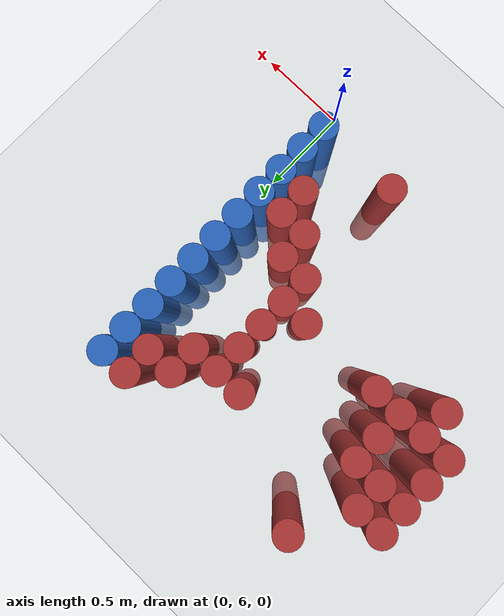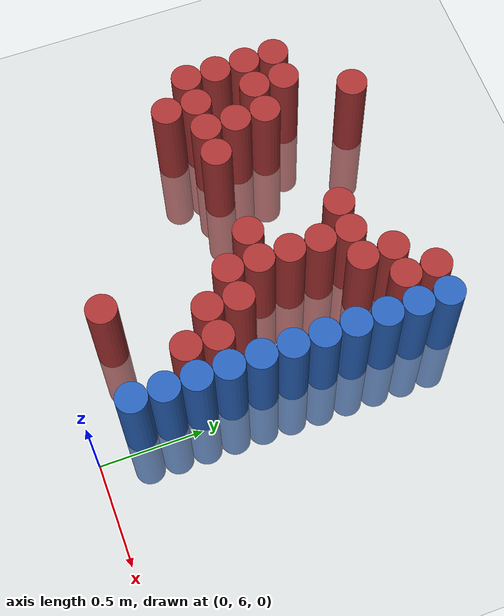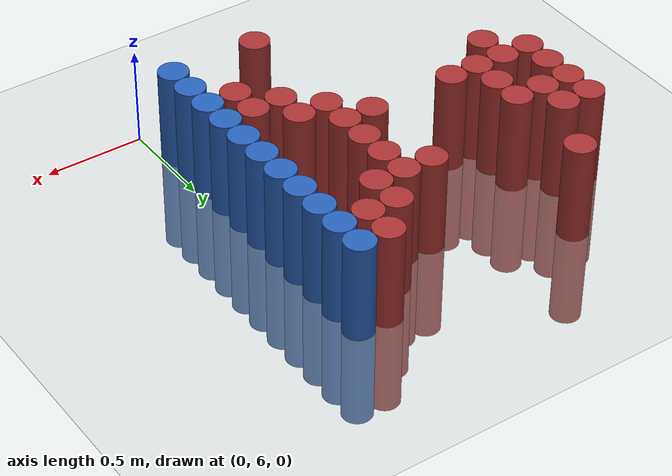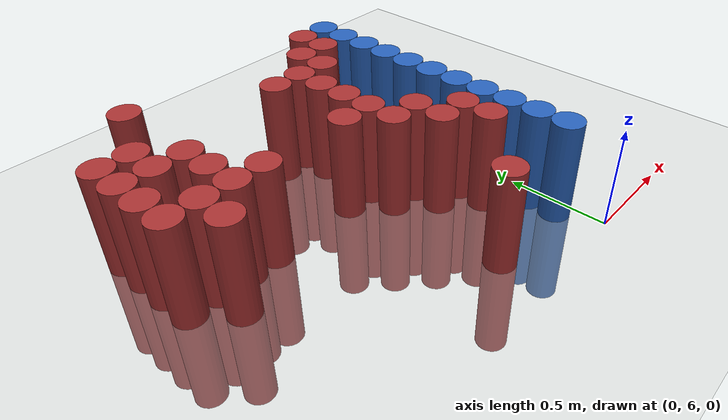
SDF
<sdf version="1.6">
 <world name="default">
  <model name="ground_plane">
   <static>1</static>
   <link name="link">
    <collision name="collision">
     <geometry><plane><normal>0 0 1</normal><size>100 100</size></plane></geometry>
     <surface><friction><ode><mu>100</mu><mu2>50</mu2></ode></friction></surface>
    </collision>
    <visual name="visual">
     <cast_shadows>0</cast_shadows>
     <geometry><plane><normal>0 0 1</normal><size>100 100</size></plane></geometry>
     <material>
      <script><uri>file://media/materials/scripts/gazebo.material</uri><name>Gazebo/Grey</name></script>
     </material>
    </visual>
   </link>
  </model>
  <model name="unit_cylinder_211">
   <static>1</static>
   <pose>-1.575000 6.975000 0.000000 0.000000 0.000000 0.000000</pose>
   <link name="link">
    <inertial>
     <mass>1</mass>
     <inertia><ixx>0.145833</ixx><ixy>0</ixy><ixz>0</ixz><iyy>0.145833</iyy><iyz>0</iyz><izz>0.125</izz></inertia>
    </inertial>
    <collision name="collision">
     <geometry><cylinder><radius>0.075000</radius><length>1</length></cylinder></geometry>
    </collision>
    <visual name="visual">
     <geometry><cylinder><radius>0.075000</radius><length>1</length></cylinder></geometry>
     <material>
      <ambient>0.648000 0.192000 0.192000 1</ambient>
      <diffuse>0.648000 0.192000 0.192000 1</diffuse>
     </material>
     <material>
      <script><name>Gazebo/Grey</name><uri>file://media/materials/scripts/gazebo.material</uri></script>
     </material>
    </visual>
    <sensor name="sensor_contact" type="contact"><contact><collision>collision</collision></contact></sensor>
   </link>
   <plugin filename="gz-sim-touchplugin-system" name="gz::sim::systems::TouchPlugin">
    <target>robot</target>
    <namespace>robot</namespace>
    <time>0.001</time>
    <enabled>true</enabled>
   </plugin>
  </model>
  <model name="unit_cylinder_212">
   <static>1</static>
   <pose>-1.575000 7.125000 0.000000 0.000000 0.000000 0.000000</pose>
   <link name="link">
    <inertial>
     <mass>1</mass>
     <inertia><ixx>0.145833</ixx><ixy>0</ixy><ixz>0</ixz><iyy>0.145833</iyy><iyz>0</iyz><izz>0.125</izz></inertia>
    </inertial>
    <collision name="collision">
     <geometry><cylinder><radius>0.075000</radius><length>1</length></cylinder></geometry>
    </collision>
    <visual name="visual">
     <geometry><cylinder><radius>0.075000</radius><length>1</length></cylinder></geometry>
     <material>
      <ambient>0.648000 0.192000 0.192000 1</ambient>
      <diffuse>0.648000 0.192000 0.192000 1</diffuse>
     </material>
     <material>
      <script><name>Gazebo/Grey</name><uri>file://media/materials/scripts/gazebo.material</uri></script>
     </material>
    </visual>
    <sensor name="sensor_contact" type="contact"><contact><collision>collision</collision></contact></sensor>
   </link>
   <plugin filename="gz-sim-touchplugin-system" name="gz::sim::systems::TouchPlugin">
    <target>robot</target>
    <namespace>robot</namespace>
    <time>0.001</time>
    <enabled>true</enabled>
   </plugin>
  </model>
  <model name="unit_cylinder_213">
   <static>1</static>
   <pose>-1.575000 7.275000 0.000000 0.000000 0.000000 0.000000</pose>
   <link name="link">
    <inertial>
     <mass>1</mass>
     <inertia><ixx>0.145833</ixx><ixy>0</ixy><ixz>0</ixz><iyy>0.145833</iyy><iyz>0</iyz><izz>0.125</izz></inertia>
    </inertial>
    <collision name="collision">
     <geometry><cylinder><radius>0.075000</radius><length>1</length></cylinder></geometry>
    </collision>
    <visual name="visual">
     <geometry><cylinder><radius>0.075000</radius><length>1</length></cylinder></geometry>
     <material>
      <ambient>0.648000 0.192000 0.192000 1</ambient>
      <diffuse>0.648000 0.192000 0.192000 1</diffuse>
     </material>
     <material>
      <script><name>Gazebo/Grey</name><uri>file://media/materials/scripts/gazebo.material</uri></script>
     </material>
    </visual>
    <sensor name="sensor_contact" type="contact"><contact><collision>collision</collision></contact></sensor>
   </link>
   <plugin filename="gz-sim-touchplugin-system" name="gz::sim::systems::TouchPlugin">
    <target>robot</target>
    <namespace>robot</namespace>
    <time>0.001</time>
    <enabled>true</enabled>
   </plugin>
  </model>
  <model name="unit_cylinder_214">
   <static>1</static>
   <pose>-1.575000 7.425000 0.000000 0.000000 0.000000 0.000000</pose>
   <link name="link">
    <inertial>
     <mass>1</mass>
     <inertia><ixx>0.145833</ixx><ixy>0</ixy><ixz>0</ixz><iyy>0.145833</iyy><iyz>0</iyz><izz>0.125</izz></inertia>
    </inertial>
    <collision name="collision">
     <geometry><cylinder><radius>0.075000</radius><length>1</length></cylinder></geometry>
    </collision>
    <visual name="visual">
     <geometry><cylinder><radius>0.075000</radius><length>1</length></cylinder></geometry>
     <material>
      <ambient>0.648000 0.192000 0.192000 1</ambient>
      <diffuse>0.648000 0.192000 0.192000 1</diffuse>
     </material>
     <material>
      <script><name>Gazebo/Grey</name><uri>file://media/materials/scripts/gazebo.material</uri></script>
     </material>
    </visual>
    <sensor name="sensor_contact" type="contact"><contact><collision>collision</collision></contact></sensor>
   </link>
   <plugin filename="gz-sim-touchplugin-system" name="gz::sim::systems::TouchPlugin">
    <target>robot</target>
    <namespace>robot</namespace>
    <time>0.001</time>
    <enabled>true</enabled>
   </plugin>
  </model>
  <model name="unit_cylinder_218">
   <static>1</static>
   <pose>-1.425000 6.825000 0.000000 0.000000 0.000000 0.000000</pose>
   <link name="link">
    <inertial>
     <mass>1</mass>
     <inertia><ixx>0.145833</ixx><ixy>0</ixy><ixz>0</ixz><iyy>0.145833</iyy><iyz>0</iyz><izz>0.125</izz></inertia>
    </inertial>
    <collision name="collision">
     <geometry><cylinder><radius>0.075000</radius><length>1</length></cylinder></geometry>
    </collision>
    <visual name="visual">
     <geometry><cylinder><radius>0.075000</radius><length>1</length></cylinder></geometry>
     <material>
      <ambient>0.648000 0.192000 0.192000 1</ambient>
      <diffuse>0.648000 0.192000 0.192000 1</diffuse>
     </material>
     <material>
      <script><name>Gazebo/Grey</name><uri>file://media/materials/scripts/gazebo.material</uri></script>
     </material>
    </visual>
    <sensor name="sensor_contact" type="contact"><contact><collision>collision</collision></contact></sensor>
   </link>
   <plugin filename="gz-sim-touchplugin-system" name="gz::sim::systems::TouchPlugin">
    <target>robot</target>
    <namespace>robot</namespace>
    <time>0.001</time>
    <enabled>true</enabled>
   </plugin>
  </model>
  <model name="unit_cylinder_219">
   <static>1</static>
   <pose>-1.425000 6.975000 0.000000 0.000000 0.000000 0.000000</pose>
   <link name="link">
    <inertial>
     <mass>1</mass>
     <inertia><ixx>0.145833</ixx><ixy>0</ixy><ixz>0</ixz><iyy>0.145833</iyy><iyz>0</iyz><izz>0.125</izz></inertia>
    </inertial>
    <collision name="collision">
     <geometry><cylinder><radius>0.075000</radius><length>1</length></cylinder></geometry>
    </collision>
    <visual name="visual">
     <geometry><cylinder><radius>0.075000</radius><length>1</length></cylinder></geometry>
     <material>
      <ambient>0.648000 0.192000 0.192000 1</ambient>
      <diffuse>0.648000 0.192000 0.192000 1</diffuse>
     </material>
     <material>
      <script><name>Gazebo/Grey</name><uri>file://media/materials/scripts/gazebo.material</uri></script>
     </material>
    </visual>
    <sensor name="sensor_contact" type="contact"><contact><collision>collision</collision></contact></sensor>
   </link>
   <plugin filename="gz-sim-touchplugin-system" name="gz::sim::systems::TouchPlugin">
    <target>robot</target>
    <namespace>robot</namespace>
    <time>0.001</time>
    <enabled>true</enabled>
   </plugin>
  </model>
  <model name="unit_cylinder_220">
   <static>1</static>
   <pose>-1.425000 7.275000 0.000000 0.000000 0.000000 0.000000</pose>
   <link name="link">
    <inertial>
     <mass>1</mass>
     <inertia><ixx>0.145833</ixx><ixy>0</ixy><ixz>0</ixz><iyy>0.145833</iyy><iyz>0</iyz><izz>0.125</izz></inertia>
    </inertial>
    <collision name="collision">
     <geometry><cylinder><radius>0.075000</radius><length>1</length></cylinder></geometry>
    </collision>
    <visual name="visual">
     <geometry><cylinder><radius>0.075000</radius><length>1</length></cylinder></geometry>
     <material>
      <ambient>0.648000 0.192000 0.192000 1</ambient>
      <diffuse>0.648000 0.192000 0.192000 1</diffuse>
     </material>
     <material>
      <script><name>Gazebo/Grey</name><uri>file://media/materials/scripts/gazebo.material</uri></script>
     </material>
    </visual>
    <sensor name="sensor_contact" type="contact"><contact><collision>collision</collision></contact></sensor>
   </link>
   <plugin filename="gz-sim-touchplugin-system" name="gz::sim::systems::TouchPlugin">
    <target>robot</target>
    <namespace>robot</namespace>
    <time>0.001</time>
    <enabled>true</enabled>
   </plugin>
  </model>
  <model name="unit_cylinder_221">
   <static>1</static>
   <pose>-1.425000 7.425000 0.000000 0.000000 0.000000 0.000000</pose>
   <link name="link">
    <inertial>
     <mass>1</mass>
     <inertia><ixx>0.145833</ixx><ixy>0</ixy><ixz>0</ixz><iyy>0.145833</iyy><iyz>0</iyz><izz>0.125</izz></inertia>
    </inertial>
    <collision name="collision">
     <geometry><cylinder><radius>0.075000</radius><length>1</length></cylinder></geometry>
    </collision>
    <visual name="visual">
     <geometry><cylinder><radius>0.075000</radius><length>1</length></cylinder></geometry>
     <material>
      <ambient>0.648000 0.192000 0.192000 1</ambient>
      <diffuse>0.648000 0.192000 0.192000 1</diffuse>
     </material>
     <material>
      <script><name>Gazebo/Grey</name><uri>file://media/materials/scripts/gazebo.material</uri></script>
     </material>
    </visual>
    <sensor name="sensor_contact" type="contact"><contact><collision>collision</collision></contact></sensor>
   </link>
   <plugin filename="gz-sim-touchplugin-system" name="gz::sim::systems::TouchPlugin">
    <target>robot</target>
    <namespace>robot</namespace>
    <time>0.001</time>
    <enabled>true</enabled>
   </plugin>
  </model>
  <model name="unit_cylinder_224">
   <static>1</static>
   <pose>-1.275000 6.975000 0.000000 0.000000 0.000000 0.000000</pose>
   <link name="link">
    <inertial>
     <mass>1</mass>
     <inertia><ixx>0.145833</ixx><ixy>0</ixy><ixz>0</ixz><iyy>0.145833</iyy><iyz>0</iyz><izz>0.125</izz></inertia>
    </inertial>
    <collision name="collision">
     <geometry><cylinder><radius>0.075000</radius><length>1</length></cylinder></geometry>
    </collision>
    <visual name="visual">
     <geometry><cylinder><radius>0.075000</radius><length>1</length></cylinder></geometry>
     <material>
      <ambient>0.648000 0.192000 0.192000 1</ambient>
      <diffuse>0.648000 0.192000 0.192000 1</diffuse>
     </material>
     <material>
      <script><name>Gazebo/Grey</name><uri>file://media/materials/scripts/gazebo.material</uri></script>
     </material>
    </visual>
    <sensor name="sensor_contact" type="contact"><contact><collision>collision</collision></contact></sensor>
   </link>
   <plugin filename="gz-sim-touchplugin-system" name="gz::sim::systems::TouchPlugin">
    <target>robot</target>
    <namespace>robot</namespace>
    <time>0.001</time>
    <enabled>true</enabled>
   </plugin>
  </model>
  <model name="unit_cylinder_225">
   <static>1</static>
   <pose>-1.275000 7.125000 0.000000 0.000000 0.000000 0.000000</pose>
   <link name="link">
    <inertial>
     <mass>1</mass>
     <inertia><ixx>0.145833</ixx><ixy>0</ixy><ixz>0</ixz><iyy>0.145833</iyy><iyz>0</iyz><izz>0.125</izz></inertia>
    </inertial>
    <collision name="collision">
     <geometry><cylinder><radius>0.075000</radius><length>1</length></cylinder></geometry>
    </collision>
    <visual name="visual">
     <geometry><cylinder><radius>0.075000</radius><length>1</length></cylinder></geometry>
     <material>
      <ambient>0.648000 0.192000 0.192000 1</ambient>
      <diffuse>0.648000 0.192000 0.192000 1</diffuse>
     </material>
     <material>
      <script><name>Gazebo/Grey</name><uri>file://media/materials/scripts/gazebo.material</uri></script>
     </material>
    </visual>
    <sensor name="sensor_contact" type="contact"><contact><collision>collision</collision></contact></sensor>
   </link>
   <plugin filename="gz-sim-touchplugin-system" name="gz::sim::systems::TouchPlugin">
    <target>robot</target>
    <namespace>robot</namespace>
    <time>0.001</time>
    <enabled>true</enabled>
   </plugin>
  </model>
  <model name="unit_cylinder_226">
   <static>1</static>
   <pose>-1.275000 7.275000 0.000000 0.000000 0.000000 0.000000</pose>
   <link name="link">
    <inertial>
     <mass>1</mass>
     <inertia><ixx>0.145833</ixx><ixy>0</ixy><ixz>0</ixz><iyy>0.145833</iyy><iyz>0</iyz><izz>0.125</izz></inertia>
    </inertial>
    <collision name="collision">
     <geometry><cylinder><radius>0.075000</radius><length>1</length></cylinder></geometry>
    </collision>
    <visual name="visual">
     <geometry><cylinder><radius>0.075000</radius><length>1</length></cylinder></geometry>
     <material>
      <ambient>0.648000 0.192000 0.192000 1</ambient>
      <diffuse>0.648000 0.192000 0.192000 1</diffuse>
     </material>
     <material>
      <script><name>Gazebo/Grey</name><uri>file://media/materials/scripts/gazebo.material</uri></script>
     </material>
    </visual>
    <sensor name="sensor_contact" type="contact"><contact><collision>collision</collision></contact></sensor>
   </link>
   <plugin filename="gz-sim-touchplugin-system" name="gz::sim::systems::TouchPlugin">
    <target>robot</target>
    <namespace>robot</namespace>
    <time>0.001</time>
    <enabled>true</enabled>
   </plugin>
  </model>
  <model name="unit_cylinder_227">
   <static>1</static>
   <pose>-1.275000 7.725000 0.000000 0.000000 0.000000 0.000000</pose>
   <link name="link">
    <inertial>
     <mass>1</mass>
     <inertia><ixx>0.145833</ixx><ixy>0</ixy><ixz>0</ixz><iyy>0.145833</iyy><iyz>0</iyz><izz>0.125</izz></inertia>
    </inertial>
    <collision name="collision">
     <geometry><cylinder><radius>0.075000</radius><length>1</length></cylinder></geometry>
    </collision>
    <visual name="visual">
     <geometry><cylinder><radius>0.075000</radius><length>1</length></cylinder></geometry>
     <material>
      <ambient>0.648000 0.192000 0.192000 1</ambient>
      <diffuse>0.648000 0.192000 0.192000 1</diffuse>
     </material>
     <material>
      <script><name>Gazebo/Grey</name><uri>file://media/materials/scripts/gazebo.material</uri></script>
     </material>
    </visual>
    <sensor name="sensor_contact" type="contact"><contact><collision>collision</collision></contact></sensor>
   </link>
   <plugin filename="gz-sim-touchplugin-system" name="gz::sim::systems::TouchPlugin">
    <target>robot</target>
    <namespace>robot</namespace>
    <time>0.001</time>
    <enabled>true</enabled>
   </plugin>
  </model>
  <model name="unit_cylinder_229">
   <static>1</static>
   <pose>-1.125000 6.975000 0.000000 0.000000 0.000000 0.000000</pose>
   <link name="link">
    <inertial>
     <mass>1</mass>
     <inertia><ixx>0.145833</ixx><ixy>0</ixy><ixz>0</ixz><iyy>0.145833</iyy><iyz>0</iyz><izz>0.125</izz></inertia>
    </inertial>
    <collision name="collision">
     <geometry><cylinder><radius>0.075000</radius><length>1</length></cylinder></geometry>
    </collision>
    <visual name="visual">
     <geometry><cylinder><radius>0.075000</radius><length>1</length></cylinder></geometry>
     <material>
      <ambient>0.648000 0.192000 0.192000 1</ambient>
      <diffuse>0.648000 0.192000 0.192000 1</diffuse>
     </material>
     <material>
      <script><name>Gazebo/Grey</name><uri>file://media/materials/scripts/gazebo.material</uri></script>
     </material>
    </visual>
    <sensor name="sensor_contact" type="contact"><contact><collision>collision</collision></contact></sensor>
   </link>
   <plugin filename="gz-sim-touchplugin-system" name="gz::sim::systems::TouchPlugin">
    <target>robot</target>
    <namespace>robot</namespace>
    <time>0.001</time>
    <enabled>true</enabled>
   </plugin>
  </model>
  <model name="unit_cylinder_247">
   <static>1</static>
   <pose>-0.675000 6.975000 0.000000 0.000000 0.000000 0.000000</pose>
   <link name="link">
    <inertial>
     <mass>1</mass>
     <inertia><ixx>0.145833</ixx><ixy>0</ixy><ixz>0</ixz><iyy>0.145833</iyy><iyz>0</iyz><izz>0.125</izz></inertia>
    </inertial>
    <collision name="collision">
     <geometry><cylinder><radius>0.075000</radius><length>1</length></cylinder></geometry>
    </collision>
    <visual name="visual">
     <geometry><cylinder><radius>0.075000</radius><length>1</length></cylinder></geometry>
     <material>
      <ambient>0.648000 0.192000 0.192000 1</ambient>
      <diffuse>0.648000 0.192000 0.192000 1</diffuse>
     </material>
     <material>
      <script><name>Gazebo/Grey</name><uri>file://media/materials/scripts/gazebo.material</uri></script>
     </material>
    </visual>
    <sensor name="sensor_contact" type="contact"><contact><collision>collision</collision></contact></sensor>
   </link>
   <plugin filename="gz-sim-touchplugin-system" name="gz::sim::systems::TouchPlugin">
    <target>robot</target>
    <namespace>robot</namespace>
    <time>0.001</time>
    <enabled>true</enabled>
   </plugin>
  </model>
  <model name="unit_cylinder_248">
   <static>1</static>
   <pose>-0.675000 7.425000 0.000000 0.000000 0.000000 0.000000</pose>
   <link name="link">
    <inertial>
     <mass>1</mass>
     <inertia><ixx>0.145833</ixx><ixy>0</ixy><ixz>0</ixz><iyy>0.145833</iyy><iyz>0</iyz><izz>0.125</izz></inertia>
    </inertial>
    <collision name="collision">
     <geometry><cylinder><radius>0.075000</radius><length>1</length></cylinder></geometry>
    </collision>
    <visual name="visual">
     <geometry><cylinder><radius>0.075000</radius><length>1</length></cylinder></geometry>
     <material>
      <ambient>0.648000 0.192000 0.192000 1</ambient>
      <diffuse>0.648000 0.192000 0.192000 1</diffuse>
     </material>
     <material>
      <script><name>Gazebo/Grey</name><uri>file://media/materials/scripts/gazebo.material</uri></script>
     </material>
    </visual>
    <sensor name="sensor_contact" type="contact"><contact><collision>collision</collision></contact></sensor>
   </link>
   <plugin filename="gz-sim-touchplugin-system" name="gz::sim::systems::TouchPlugin">
    <target>robot</target>
    <namespace>robot</namespace>
    <time>0.001</time>
    <enabled>true</enabled>
   </plugin>
  </model>
  <model name="unit_cylinder_257">
   <static>1</static>
   <pose>-0.525000 6.225000 0.000000 0.000000 0.000000 0.000000</pose>
   <link name="link">
    <inertial>
     <mass>1</mass>
     <inertia><ixx>0.145833</ixx><ixy>0</ixy><ixz>0</ixz><iyy>0.145833</iyy><iyz>0</iyz><izz>0.125</izz></inertia>
    </inertial>
    <collision name="collision">
     <geometry><cylinder><radius>0.075000</radius><length>1</length></cylinder></geometry>
    </collision>
    <visual name="visual">
     <geometry><cylinder><radius>0.075000</radius><length>1</length></cylinder></geometry>
     <material>
      <ambient>0.648000 0.192000 0.192000 1</ambient>
      <diffuse>0.648000 0.192000 0.192000 1</diffuse>
     </material>
     <material>
      <script><name>Gazebo/Grey</name><uri>file://media/materials/scripts/gazebo.material</uri></script>
     </material>
    </visual>
    <sensor name="sensor_contact" type="contact"><contact><collision>collision</collision></contact></sensor>
   </link>
   <plugin filename="gz-sim-touchplugin-system" name="gz::sim::systems::TouchPlugin">
    <target>robot</target>
    <namespace>robot</namespace>
    <time>0.001</time>
    <enabled>true</enabled>
   </plugin>
  </model>
  <model name="unit_cylinder_258">
   <static>1</static>
   <pose>-0.525000 6.825000 0.000000 0.000000 0.000000 0.000000</pose>
   <link name="link">
    <inertial>
     <mass>1</mass>
     <inertia><ixx>0.145833</ixx><ixy>0</ixy><ixz>0</ixz><iyy>0.145833</iyy><iyz>0</iyz><izz>0.125</izz></inertia>
    </inertial>
    <collision name="collision">
     <geometry><cylinder><radius>0.075000</radius><length>1</length></cylinder></geometry>
    </collision>
    <visual name="visual">
     <geometry><cylinder><radius>0.075000</radius><length>1</length></cylinder></geometry>
     <material>
      <ambient>0.648000 0.192000 0.192000 1</ambient>
      <diffuse>0.648000 0.192000 0.192000 1</diffuse>
     </material>
     <material>
      <script><name>Gazebo/Grey</name><uri>file://media/materials/scripts/gazebo.material</uri></script>
     </material>
    </visual>
    <sensor name="sensor_contact" type="contact"><contact><collision>collision</collision></contact></sensor>
   </link>
   <plugin filename="gz-sim-touchplugin-system" name="gz::sim::systems::TouchPlugin">
    <target>robot</target>
    <namespace>robot</namespace>
    <time>0.001</time>
    <enabled>true</enabled>
   </plugin>
  </model>
  <model name="unit_cylinder_259">
   <static>1</static>
   <pose>-0.525000 6.975000 0.000000 0.000000 0.000000 0.000000</pose>
   <link name="link">
    <inertial>
     <mass>1</mass>
     <inertia><ixx>0.145833</ixx><ixy>0</ixy><ixz>0</ixz><iyy>0.145833</iyy><iyz>0</iyz><izz>0.125</izz></inertia>
    </inertial>
    <collision name="collision">
     <geometry><cylinder><radius>0.075000</radius><length>1</length></cylinder></geometry>
    </collision>
    <visual name="visual">
     <geometry><cylinder><radius>0.075000</radius><length>1</length></cylinder></geometry>
     <material>
      <ambient>0.648000 0.192000 0.192000 1</ambient>
      <diffuse>0.648000 0.192000 0.192000 1</diffuse>
     </material>
     <material>
      <script><name>Gazebo/Grey</name><uri>file://media/materials/scripts/gazebo.material</uri></script>
     </material>
    </visual>
    <sensor name="sensor_contact" type="contact"><contact><collision>collision</collision></contact></sensor>
   </link>
   <plugin filename="gz-sim-touchplugin-system" name="gz::sim::systems::TouchPlugin">
    <target>robot</target>
    <namespace>robot</namespace>
    <time>0.001</time>
    <enabled>true</enabled>
   </plugin>
  </model>
  <model name="unit_cylinder_260">
   <static>1</static>
   <pose>-0.525000 7.125000 0.000000 0.000000 0.000000 0.000000</pose>
   <link name="link">
    <inertial>
     <mass>1</mass>
     <inertia><ixx>0.145833</ixx><ixy>0</ixy><ixz>0</ixz><iyy>0.145833</iyy><iyz>0</iyz><izz>0.125</izz></inertia>
    </inertial>
    <collision name="collision">
     <geometry><cylinder><radius>0.075000</radius><length>1</length></cylinder></geometry>
    </collision>
    <visual name="visual">
     <geometry><cylinder><radius>0.075000</radius><length>1</length></cylinder></geometry>
     <material>
      <ambient>0.648000 0.192000 0.192000 1</ambient>
      <diffuse>0.648000 0.192000 0.192000 1</diffuse>
     </material>
     <material>
      <script><name>Gazebo/Grey</name><uri>file://media/materials/scripts/gazebo.material</uri></script>
     </material>
    </visual>
    <sensor name="sensor_contact" type="contact"><contact><collision>collision</collision></contact></sensor>
   </link>
   <plugin filename="gz-sim-touchplugin-system" name="gz::sim::systems::TouchPlugin">
    <target>robot</target>
    <namespace>robot</namespace>
    <time>0.001</time>
    <enabled>true</enabled>
   </plugin>
  </model>
  <model name="unit_cylinder_261">
   <static>1</static>
   <pose>-0.525000 7.275000 0.000000 0.000000 0.000000 0.000000</pose>
   <link name="link">
    <inertial>
     <mass>1</mass>
     <inertia><ixx>0.145833</ixx><ixy>0</ixy><ixz>0</ixz><iyy>0.145833</iyy><iyz>0</iyz><izz>0.125</izz></inertia>
    </inertial>
    <collision name="collision">
     <geometry><cylinder><radius>0.075000</radius><length>1</length></cylinder></geometry>
    </collision>
    <visual name="visual">
     <geometry><cylinder><radius>0.075000</radius><length>1</length></cylinder></geometry>
     <material>
      <ambient>0.648000 0.192000 0.192000 1</ambient>
      <diffuse>0.648000 0.192000 0.192000 1</diffuse>
     </material>
     <material>
      <script><name>Gazebo/Grey</name><uri>file://media/materials/scripts/gazebo.material</uri></script>
     </material>
    </visual>
    <sensor name="sensor_contact" type="contact"><contact><collision>collision</collision></contact></sensor>
   </link>
   <plugin filename="gz-sim-touchplugin-system" name="gz::sim::systems::TouchPlugin">
    <target>robot</target>
    <namespace>robot</namespace>
    <time>0.001</time>
    <enabled>true</enabled>
   </plugin>
  </model>
  <model name="unit_cylinder_262">
   <static>1</static>
   <pose>-0.525000 7.425000 0.000000 0.000000 0.000000 0.000000</pose>
   <link name="link">
    <inertial>
     <mass>1</mass>
     <inertia><ixx>0.145833</ixx><ixy>0</ixy><ixz>0</ixz><iyy>0.145833</iyy><iyz>0</iyz><izz>0.125</izz></inertia>
    </inertial>
    <collision name="collision">
     <geometry><cylinder><radius>0.075000</radius><length>1</length></cylinder></geometry>
    </collision>
    <visual name="visual">
     <geometry><cylinder><radius>0.075000</radius><length>1</length></cylinder></geometry>
     <material>
      <ambient>0.648000 0.192000 0.192000 1</ambient>
      <diffuse>0.648000 0.192000 0.192000 1</diffuse>
     </material>
     <material>
      <script><name>Gazebo/Grey</name><uri>file://media/materials/scripts/gazebo.material</uri></script>
     </material>
    </visual>
    <sensor name="sensor_contact" type="contact"><contact><collision>collision</collision></contact></sensor>
   </link>
   <plugin filename="gz-sim-touchplugin-system" name="gz::sim::systems::TouchPlugin">
    <target>robot</target>
    <namespace>robot</namespace>
    <time>0.001</time>
    <enabled>true</enabled>
   </plugin>
  </model>
  <model name="unit_cylinder_268">
   <static>1</static>
   <pose>-0.375000 6.675000 0.000000 0.000000 0.000000 0.000000</pose>
   <link name="link">
    <inertial>
     <mass>1</mass>
     <inertia><ixx>0.145833</ixx><ixy>0</ixy><ixz>0</ixz><iyy>0.145833</iyy><iyz>0</iyz><izz>0.125</izz></inertia>
    </inertial>
    <collision name="collision">
     <geometry><cylinder><radius>0.075000</radius><length>1</length></cylinder></geometry>
    </collision>
    <visual name="visual">
     <geometry><cylinder><radius>0.075000</radius><length>1</length></cylinder></geometry>
     <material>
      <ambient>0.648000 0.192000 0.192000 1</ambient>
      <diffuse>0.648000 0.192000 0.192000 1</diffuse>
     </material>
     <material>
      <script><name>Gazebo/Grey</name><uri>file://media/materials/scripts/gazebo.material</uri></script>
     </material>
    </visual>
    <sensor name="sensor_contact" type="contact"><contact><collision>collision</collision></contact></sensor>
   </link>
   <plugin filename="gz-sim-touchplugin-system" name="gz::sim::systems::TouchPlugin">
    <target>robot</target>
    <namespace>robot</namespace>
    <time>0.001</time>
    <enabled>true</enabled>
   </plugin>
  </model>
  <model name="unit_cylinder_269">
   <static>1</static>
   <pose>-0.375000 6.825000 0.000000 0.000000 0.000000 0.000000</pose>
   <link name="link">
    <inertial>
     <mass>1</mass>
     <inertia><ixx>0.145833</ixx><ixy>0</ixy><ixz>0</ixz><iyy>0.145833</iyy><iyz>0</iyz><izz>0.125</izz></inertia>
    </inertial>
    <collision name="collision">
     <geometry><cylinder><radius>0.075000</radius><length>1</length></cylinder></geometry>
    </collision>
    <visual name="visual">
     <geometry><cylinder><radius>0.075000</radius><length>1</length></cylinder></geometry>
     <material>
      <ambient>0.648000 0.192000 0.192000 1</ambient>
      <diffuse>0.648000 0.192000 0.192000 1</diffuse>
     </material>
     <material>
      <script><name>Gazebo/Grey</name><uri>file://media/materials/scripts/gazebo.material</uri></script>
     </material>
    </visual>
    <sensor name="sensor_contact" type="contact"><contact><collision>collision</collision></contact></sensor>
   </link>
   <plugin filename="gz-sim-touchplugin-system" name="gz::sim::systems::TouchPlugin">
    <target>robot</target>
    <namespace>robot</namespace>
    <time>0.001</time>
    <enabled>true</enabled>
   </plugin>
  </model>
  <model name="unit_cylinder_270">
   <static>1</static>
   <pose>-0.375000 7.425000 0.000000 0.000000 0.000000 0.000000</pose>
   <link name="link">
    <inertial>
     <mass>1</mass>
     <inertia><ixx>0.145833</ixx><ixy>0</ixy><ixz>0</ixz><iyy>0.145833</iyy><iyz>0</iyz><izz>0.125</izz></inertia>
    </inertial>
    <collision name="collision">
     <geometry><cylinder><radius>0.075000</radius><length>1</length></cylinder></geometry>
    </collision>
    <visual name="visual">
     <geometry><cylinder><radius>0.075000</radius><length>1</length></cylinder></geometry>
     <material>
      <ambient>0.648000 0.192000 0.192000 1</ambient>
      <diffuse>0.648000 0.192000 0.192000 1</diffuse>
     </material>
     <material>
      <script><name>Gazebo/Grey</name><uri>file://media/materials/scripts/gazebo.material</uri></script>
     </material>
    </visual>
    <sensor name="sensor_contact" type="contact"><contact><collision>collision</collision></contact></sensor>
   </link>
   <plugin filename="gz-sim-touchplugin-system" name="gz::sim::systems::TouchPlugin">
    <target>robot</target>
    <namespace>robot</namespace>
    <time>0.001</time>
    <enabled>true</enabled>
   </plugin>
  </model>
  <model name="unit_cylinder_271">
   <static>1</static>
   <pose>-0.375000 7.575000 0.000000 0.000000 0.000000 0.000000</pose>
   <link name="link">
    <inertial>
     <mass>1</mass>
     <inertia><ixx>0.145833</ixx><ixy>0</ixy><ixz>0</ixz><iyy>0.145833</iyy><iyz>0</iyz><izz>0.125</izz></inertia>
    </inertial>
    <collision name="collision">
     <geometry><cylinder><radius>0.075000</radius><length>1</length></cylinder></geometry>
    </collision>
    <visual name="visual">
     <geometry><cylinder><radius>0.075000</radius><length>1</length></cylinder></geometry>
     <material>
      <ambient>0.648000 0.192000 0.192000 1</ambient>
      <diffuse>0.648000 0.192000 0.192000 1</diffuse>
     </material>
     <material>
      <script><name>Gazebo/Grey</name><uri>file://media/materials/scripts/gazebo.material</uri></script>
     </material>
    </visual>
    <sensor name="sensor_contact" type="contact"><contact><collision>collision</collision></contact></sensor>
   </link>
   <plugin filename="gz-sim-touchplugin-system" name="gz::sim::systems::TouchPlugin">
    <target>robot</target>
    <namespace>robot</namespace>
    <time>0.001</time>
    <enabled>true</enabled>
   </plugin>
  </model>
  <model name="unit_cylinder_278">
   <static>1</static>
   <pose>-0.225000 6.525000 0.000000 0.000000 0.000000 0.000000</pose>
   <link name="link">
    <inertial>
     <mass>1</mass>
     <inertia><ixx>0.145833</ixx><ixy>0</ixy><ixz>0</ixz><iyy>0.145833</iyy><iyz>0</iyz><izz>0.125</izz></inertia>
    </inertial>
    <collision name="collision">
     <geometry><cylinder><radius>0.075000</radius><length>1</length></cylinder></geometry>
    </collision>
    <visual name="visual">
     <geometry><cylinder><radius>0.075000</radius><length>1</length></cylinder></geometry>
     <material>
      <ambient>0.648000 0.192000 0.192000 1</ambient>
      <diffuse>0.648000 0.192000 0.192000 1</diffuse>
     </material>
     <material>
      <script><name>Gazebo/Grey</name><uri>file://media/materials/scripts/gazebo.material</uri></script>
     </material>
    </visual>
    <sensor name="sensor_contact" type="contact"><contact><collision>collision</collision></contact></sensor>
   </link>
   <plugin filename="gz-sim-touchplugin-system" name="gz::sim::systems::TouchPlugin">
    <target>robot</target>
    <namespace>robot</namespace>
    <time>0.001</time>
    <enabled>true</enabled>
   </plugin>
  </model>
  <model name="unit_cylinder_279">
   <static>1</static>
   <pose>-0.225000 6.675000 0.000000 0.000000 0.000000 0.000000</pose>
   <link name="link">
    <inertial>
     <mass>1</mass>
     <inertia><ixx>0.145833</ixx><ixy>0</ixy><ixz>0</ixz><iyy>0.145833</iyy><iyz>0</iyz><izz>0.125</izz></inertia>
    </inertial>
    <collision name="collision">
     <geometry><cylinder><radius>0.075000</radius><length>1</length></cylinder></geometry>
    </collision>
    <visual name="visual">
     <geometry><cylinder><radius>0.075000</radius><length>1</length></cylinder></geometry>
     <material>
      <ambient>0.648000 0.192000 0.192000 1</ambient>
      <diffuse>0.648000 0.192000 0.192000 1</diffuse>
     </material>
     <material>
      <script><name>Gazebo/Grey</name><uri>file://media/materials/scripts/gazebo.material</uri></script>
     </material>
    </visual>
    <sensor name="sensor_contact" type="contact"><contact><collision>collision</collision></contact></sensor>
   </link>
   <plugin filename="gz-sim-touchplugin-system" name="gz::sim::systems::TouchPlugin">
    <target>robot</target>
    <namespace>robot</namespace>
    <time>0.001</time>
    <enabled>true</enabled>
   </plugin>
  </model>
  <model name="unit_cylinder_280">
   <static>1</static>
   <pose>-0.225000 7.575000 0.000000 0.000000 0.000000 0.000000</pose>
   <link name="link">
    <inertial>
     <mass>1</mass>
     <inertia><ixx>0.145833</ixx><ixy>0</ixy><ixz>0</ixz><iyy>0.145833</iyy><iyz>0</iyz><izz>0.125</izz></inertia>
    </inertial>
    <collision name="collision">
     <geometry><cylinder><radius>0.075000</radius><length>1</length></cylinder></geometry>
    </collision>
    <visual name="visual">
     <geometry><cylinder><radius>0.075000</radius><length>1</length></cylinder></geometry>
     <material>
      <ambient>0.648000 0.192000 0.192000 1</ambient>
      <diffuse>0.648000 0.192000 0.192000 1</diffuse>
     </material>
     <material>
      <script><name>Gazebo/Grey</name><uri>file://media/materials/scripts/gazebo.material</uri></script>
     </material>
    </visual>
    <sensor name="sensor_contact" type="contact"><contact><collision>collision</collision></contact></sensor>
   </link>
   <plugin filename="gz-sim-touchplugin-system" name="gz::sim::systems::TouchPlugin">
    <target>robot</target>
    <namespace>robot</namespace>
    <time>0.001</time>
    <enabled>true</enabled>
   </plugin>
  </model>
  <model name="unit_cylinder_281">
   <static>1</static>
   <pose>-0.225000 7.725000 0.000000 0.000000 0.000000 0.000000</pose>
   <link name="link">
    <inertial>
     <mass>1</mass>
     <inertia><ixx>0.145833</ixx><ixy>0</ixy><ixz>0</ixz><iyy>0.145833</iyy><iyz>0</iyz><izz>0.125</izz></inertia>
    </inertial>
    <collision name="collision">
     <geometry><cylinder><radius>0.075000</radius><length>1</length></cylinder></geometry>
    </collision>
    <visual name="visual">
     <geometry><cylinder><radius>0.075000</radius><length>1</length></cylinder></geometry>
     <material>
      <ambient>0.648000 0.192000 0.192000 1</ambient>
      <diffuse>0.648000 0.192000 0.192000 1</diffuse>
     </material>
     <material>
      <script><name>Gazebo/Grey</name><uri>file://media/materials/scripts/gazebo.material</uri></script>
     </material>
    </visual>
    <sensor name="sensor_contact" type="contact"><contact><collision>collision</collision></contact></sensor>
   </link>
   <plugin filename="gz-sim-touchplugin-system" name="gz::sim::systems::TouchPlugin">
    <target>robot</target>
    <namespace>robot</namespace>
    <time>0.001</time>
    <enabled>true</enabled>
   </plugin>
  </model>
  <model name="unit_cylinder_295">
   <static>1</static>
   <pose>-0.075000 6.225000 0.000000 0.000000 0.000000 0.000000</pose>
   <link name="link">
    <inertial>
     <mass>1</mass>
     <inertia><ixx>0.145833</ixx><ixy>0</ixy><ixz>0</ixz><iyy>0.145833</iyy><iyz>0</iyz><izz>0.125</izz></inertia>
    </inertial>
    <collision name="collision">
     <geometry><cylinder><radius>0.075000</radius><length>1</length></cylinder></geometry>
    </collision>
    <visual name="visual">
     <geometry><cylinder><radius>0.075000</radius><length>1</length></cylinder></geometry>
     <material>
      <ambient>0.152000 0.379000 0.720000 1</ambient>
      <diffuse>0.152000 0.379000 0.720000 1</diffuse>
     </material>
     <material>
      <script><name>Gazebo/Grey</name><uri>file://media/materials/scripts/gazebo.material</uri></script>
     </material>
    </visual>
    <sensor name="sensor_contact" type="contact"><contact><collision>collision</collision></contact></sensor>
   </link>
   <plugin filename="gz-sim-touchplugin-system" name="gz::sim::systems::TouchPlugin">
    <target>robot</target>
    <namespace>robot</namespace>
    <time>0.001</time>
    <enabled>true</enabled>
   </plugin>
  </model>
  <model name="unit_cylinder_296">
   <static>1</static>
   <pose>-0.075000 6.375000 0.000000 0.000000 0.000000 0.000000</pose>
   <link name="link">
    <inertial>
     <mass>1</mass>
     <inertia><ixx>0.145833</ixx><ixy>0</ixy><ixz>0</ixz><iyy>0.145833</iyy><iyz>0</iyz><izz>0.125</izz></inertia>
    </inertial>
    <collision name="collision">
     <geometry><cylinder><radius>0.075000</radius><length>1</length></cylinder></geometry>
    </collision>
    <visual name="visual">
     <geometry><cylinder><radius>0.075000</radius><length>1</length></cylinder></geometry>
     <material>
      <ambient>0.152000 0.379000 0.720000 1</ambient>
      <diffuse>0.152000 0.379000 0.720000 1</diffuse>
     </material>
     <material>
      <script><name>Gazebo/Grey</name><uri>file://media/materials/scripts/gazebo.material</uri></script>
     </material>
    </visual>
    <sensor name="sensor_contact" type="contact"><contact><collision>collision</collision></contact></sensor>
   </link>
   <plugin filename="gz-sim-touchplugin-system" name="gz::sim::systems::TouchPlugin">
    <target>robot</target>
    <namespace>robot</namespace>
    <time>0.001</time>
    <enabled>true</enabled>
   </plugin>
  </model>
  <model name="unit_cylinder_297">
   <static>1</static>
   <pose>-0.075000 6.525000 0.000000 0.000000 0.000000 0.000000</pose>
   <link name="link">
    <inertial>
     <mass>1</mass>
     <inertia><ixx>0.145833</ixx><ixy>0</ixy><ixz>0</ixz><iyy>0.145833</iyy><iyz>0</iyz><izz>0.125</izz></inertia>
    </inertial>
    <collision name="collision">
     <geometry><cylinder><radius>0.075000</radius><length>1</length></cylinder></geometry>
    </collision>
    <visual name="visual">
     <geometry><cylinder><radius>0.075000</radius><length>1</length></cylinder></geometry>
     <material>
      <ambient>0.152000 0.379000 0.720000 1</ambient>
      <diffuse>0.152000 0.379000 0.720000 1</diffuse>
     </material>
     <material>
      <script><name>Gazebo/Grey</name><uri>file://media/materials/scripts/gazebo.material</uri></script>
     </material>
    </visual>
    <sensor name="sensor_contact" type="contact"><contact><collision>collision</collision></contact></sensor>
   </link>
   <plugin filename="gz-sim-touchplugin-system" name="gz::sim::systems::TouchPlugin">
    <target>robot</target>
    <namespace>robot</namespace>
    <time>0.001</time>
    <enabled>true</enabled>
   </plugin>
  </model>
  <model name="unit_cylinder_298">
   <static>1</static>
   <pose>-0.075000 6.675000 0.000000 0.000000 0.000000 0.000000</pose>
   <link name="link">
    <inertial>
     <mass>1</mass>
     <inertia><ixx>0.145833</ixx><ixy>0</ixy><ixz>0</ixz><iyy>0.145833</iyy><iyz>0</iyz><izz>0.125</izz></inertia>
    </inertial>
    <collision name="collision">
     <geometry><cylinder><radius>0.075000</radius><length>1</length></cylinder></geometry>
    </collision>
    <visual name="visual">
     <geometry><cylinder><radius>0.075000</radius><length>1</length></cylinder></geometry>
     <material>
      <ambient>0.152000 0.379000 0.720000 1</ambient>
      <diffuse>0.152000 0.379000 0.720000 1</diffuse>
     </material>
     <material>
      <script><name>Gazebo/Grey</name><uri>file://media/materials/scripts/gazebo.material</uri></script>
     </material>
    </visual>
    <sensor name="sensor_contact" type="contact"><contact><collision>collision</collision></contact></sensor>
   </link>
   <plugin filename="gz-sim-touchplugin-system" name="gz::sim::systems::TouchPlugin">
    <target>robot</target>
    <namespace>robot</namespace>
    <time>0.001</time>
    <enabled>true</enabled>
   </plugin>
  </model>
  <model name="unit_cylinder_299">
   <static>1</static>
   <pose>-0.075000 6.825000 0.000000 0.000000 0.000000 0.000000</pose>
   <link name="link">
    <inertial>
     <mass>1</mass>
     <inertia><ixx>0.145833</ixx><ixy>0</ixy><ixz>0</ixz><iyy>0.145833</iyy><iyz>0</iyz><izz>0.125</izz></inertia>
    </inertial>
    <collision name="collision">
     <geometry><cylinder><radius>0.075000</radius><length>1</length></cylinder></geometry>
    </collision>
    <visual name="visual">
     <geometry><cylinder><radius>0.075000</radius><length>1</length></cylinder></geometry>
     <material>
      <ambient>0.152000 0.379000 0.720000 1</ambient>
      <diffuse>0.152000 0.379000 0.720000 1</diffuse>
     </material>
     <material>
      <script><name>Gazebo/Grey</name><uri>file://media/materials/scripts/gazebo.material</uri></script>
     </material>
    </visual>
    <sensor name="sensor_contact" type="contact"><contact><collision>collision</collision></contact></sensor>
   </link>
   <plugin filename="gz-sim-touchplugin-system" name="gz::sim::systems::TouchPlugin">
    <target>robot</target>
    <namespace>robot</namespace>
    <time>0.001</time>
    <enabled>true</enabled>
   </plugin>
  </model>
  <model name="unit_cylinder_300">
   <static>1</static>
   <pose>-0.075000 6.975000 0.000000 0.000000 0.000000 0.000000</pose>
   <link name="link">
    <inertial>
     <mass>1</mass>
     <inertia><ixx>0.145833</ixx><ixy>0</ixy><ixz>0</ixz><iyy>0.145833</iyy><iyz>0</iyz><izz>0.125</izz></inertia>
    </inertial>
    <collision name="collision">
     <geometry><cylinder><radius>0.075000</radius><length>1</length></cylinder></geometry>
    </collision>
    <visual name="visual">
     <geometry><cylinder><radius>0.075000</radius><length>1</length></cylinder></geometry>
     <material>
      <ambient>0.152000 0.379000 0.720000 1</ambient>
      <diffuse>0.152000 0.379000 0.720000 1</diffuse>
     </material>
     <material>
      <script><name>Gazebo/Grey</name><uri>file://media/materials/scripts/gazebo.material</uri></script>
     </material>
    </visual>
    <sensor name="sensor_contact" type="contact"><contact><collision>collision</collision></contact></sensor>
   </link>
   <plugin filename="gz-sim-touchplugin-system" name="gz::sim::systems::TouchPlugin">
    <target>robot</target>
    <namespace>robot</namespace>
    <time>0.001</time>
    <enabled>true</enabled>
   </plugin>
  </model>
  <model name="unit_cylinder_301">
   <static>1</static>
   <pose>-0.075000 7.125000 0.000000 0.000000 0.000000 0.000000</pose>
   <link name="link">
    <inertial>
     <mass>1</mass>
     <inertia><ixx>0.145833</ixx><ixy>0</ixy><ixz>0</ixz><iyy>0.145833</iyy><iyz>0</iyz><izz>0.125</izz></inertia>
    </inertial>
    <collision name="collision">
     <geometry><cylinder><radius>0.075000</radius><length>1</length></cylinder></geometry>
    </collision>
    <visual name="visual">
     <geometry><cylinder><radius>0.075000</radius><length>1</length></cylinder></geometry>
     <material>
      <ambient>0.152000 0.379000 0.720000 1</ambient>
      <diffuse>0.152000 0.379000 0.720000 1</diffuse>
     </material>
     <material>
      <script><name>Gazebo/Grey</name><uri>file://media/materials/scripts/gazebo.material</uri></script>
     </material>
    </visual>
    <sensor name="sensor_contact" type="contact"><contact><collision>collision</collision></contact></sensor>
   </link>
   <plugin filename="gz-sim-touchplugin-system" name="gz::sim::systems::TouchPlugin">
    <target>robot</target>
    <namespace>robot</namespace>
    <time>0.001</time>
    <enabled>true</enabled>
   </plugin>
  </model>
  <model name="unit_cylinder_302">
   <static>1</static>
   <pose>-0.075000 7.275000 0.000000 0.000000 0.000000 0.000000</pose>
   <link name="link">
    <inertial>
     <mass>1</mass>
     <inertia><ixx>0.145833</ixx><ixy>0</ixy><ixz>0</ixz><iyy>0.145833</iyy><iyz>0</iyz><izz>0.125</izz></inertia>
    </inertial>
    <collision name="collision">
     <geometry><cylinder><radius>0.075000</radius><length>1</length></cylinder></geometry>
    </collision>
    <visual name="visual">
     <geometry><cylinder><radius>0.075000</radius><length>1</length></cylinder></geometry>
     <material>
      <ambient>0.152000 0.379000 0.720000 1</ambient>
      <diffuse>0.152000 0.379000 0.720000 1</diffuse>
     </material>
     <material>
      <script><name>Gazebo/Grey</name><uri>file://media/materials/scripts/gazebo.material</uri></script>
     </material>
    </visual>
    <sensor name="sensor_contact" type="contact"><contact><collision>collision</collision></contact></sensor>
   </link>
   <plugin filename="gz-sim-touchplugin-system" name="gz::sim::systems::TouchPlugin">
    <target>robot</target>
    <namespace>robot</namespace>
    <time>0.001</time>
    <enabled>true</enabled>
   </plugin>
  </model>
  <model name="unit_cylinder_303">
   <static>1</static>
   <pose>-0.075000 7.425000 0.000000 0.000000 0.000000 0.000000</pose>
   <link name="link">
    <inertial>
     <mass>1</mass>
     <inertia><ixx>0.145833</ixx><ixy>0</ixy><ixz>0</ixz><iyy>0.145833</iyy><iyz>0</iyz><izz>0.125</izz></inertia>
    </inertial>
    <collision name="collision">
     <geometry><cylinder><radius>0.075000</radius><length>1</length></cylinder></geometry>
    </collision>
    <visual name="visual">
     <geometry><cylinder><radius>0.075000</radius><length>1</length></cylinder></geometry>
     <material>
      <ambient>0.152000 0.379000 0.720000 1</ambient>
      <diffuse>0.152000 0.379000 0.720000 1</diffuse>
     </material>
     <material>
      <script><name>Gazebo/Grey</name><uri>file://media/materials/scripts/gazebo.material</uri></script>
     </material>
    </visual>
    <sensor name="sensor_contact" type="contact"><contact><collision>collision</collision></contact></sensor>
   </link>
   <plugin filename="gz-sim-touchplugin-system" name="gz::sim::systems::TouchPlugin">
    <target>robot</target>
    <namespace>robot</namespace>
    <time>0.001</time>
    <enabled>true</enabled>
   </plugin>
  </model>
  <model name="unit_cylinder_304">
   <static>1</static>
   <pose>-0.075000 7.575000 0.000000 0.000000 0.000000 0.000000</pose>
   <link name="link">
    <inertial>
     <mass>1</mass>
     <inertia><ixx>0.145833</ixx><ixy>0</ixy><ixz>0</ixz><iyy>0.145833</iyy><iyz>0</iyz><izz>0.125</izz></inertia>
    </inertial>
    <collision name="collision">
     <geometry><cylinder><radius>0.075000</radius><length>1</length></cylinder></geometry>
    </collision>
    <visual name="visual">
     <geometry><cylinder><radius>0.075000</radius><length>1</length></cylinder></geometry>
     <material>
      <ambient>0.152000 0.379000 0.720000 1</ambient>
      <diffuse>0.152000 0.379000 0.720000 1</diffuse>
     </material>
     <material>
      <script><name>Gazebo/Grey</name><uri>file://media/materials/scripts/gazebo.material</uri></script>
     </material>
    </visual>
    <sensor name="sensor_contact" type="contact"><contact><collision>collision</collision></contact></sensor>
   </link>
   <plugin filename="gz-sim-touchplugin-system" name="gz::sim::systems::TouchPlugin">
    <target>robot</target>
    <namespace>robot</namespace>
    <time>0.001</time>
    <enabled>true</enabled>
   </plugin>
  </model>
  <model name="unit_cylinder_305">
   <static>1</static>
   <pose>-0.075000 7.725000 0.000000 0.000000 0.000000 0.000000</pose>
   <link name="link">
    <inertial>
     <mass>1</mass>
     <inertia><ixx>0.145833</ixx><ixy>0</ixy><ixz>0</ixz><iyy>0.145833</iyy><iyz>0</iyz><izz>0.125</izz></inertia>
    </inertial>
    <collision name="collision">
     <geometry><cylinder><radius>0.075000</radius><length>1</length></cylinder></geometry>
    </collision>
    <visual name="visual">
     <geometry><cylinder><radius>0.075000</radius><length>1</length></cylinder></geometry>
     <material>
      <ambient>0.152000 0.379000 0.720000 1</ambient>
      <diffuse>0.152000 0.379000 0.720000 1</diffuse>
     </material>
     <material>
      <script><name>Gazebo/Grey</name><uri>file://media/materials/scripts/gazebo.material</uri></script>
     </material>
    </visual>
    <sensor name="sensor_contact" type="contact"><contact><collision>collision</collision></contact></sensor>
   </link>
   <plugin filename="gz-sim-touchplugin-system" name="gz::sim::systems::TouchPlugin">
    <target>robot</target>
    <namespace>robot</namespace>
    <time>0.001</time>
    <enabled>true</enabled>
   </plugin>
  </model>
 </world>
</sdf>
